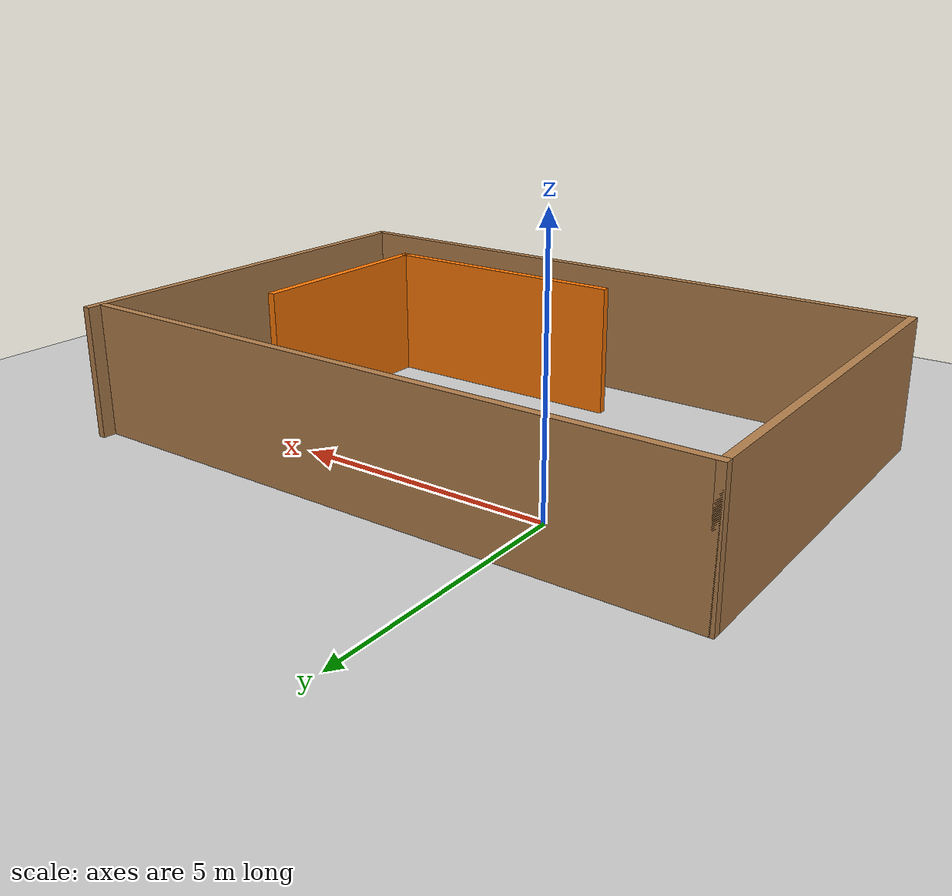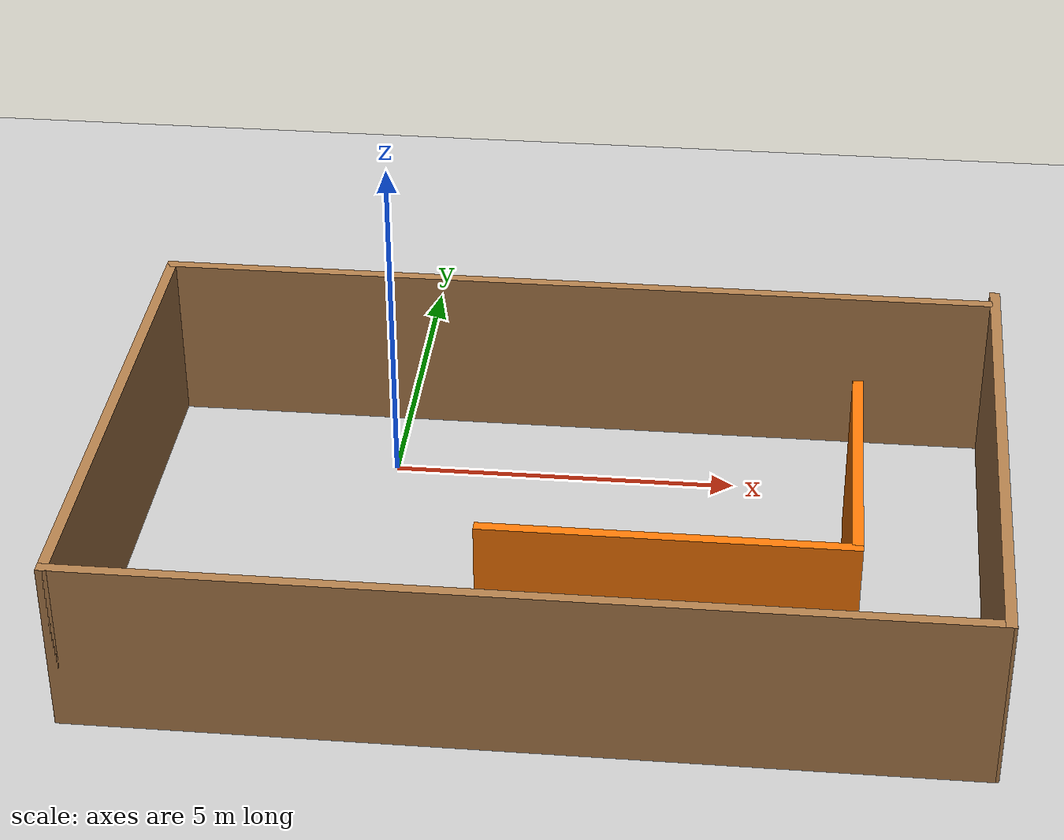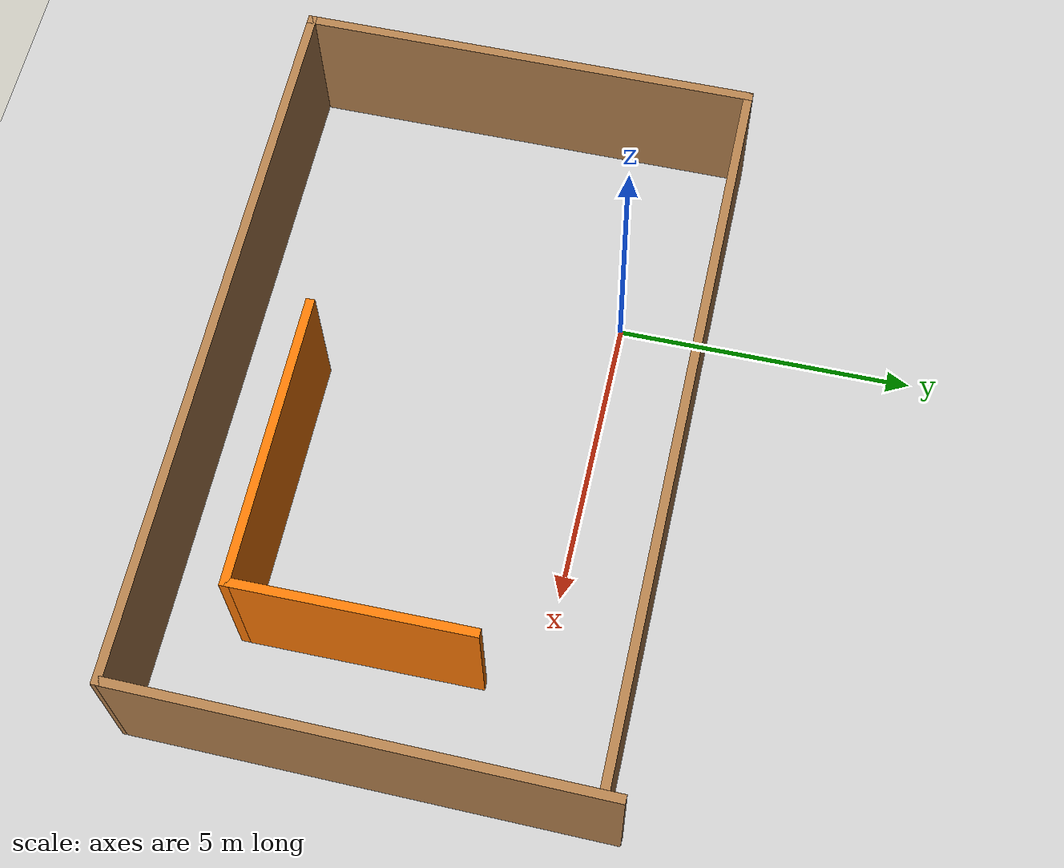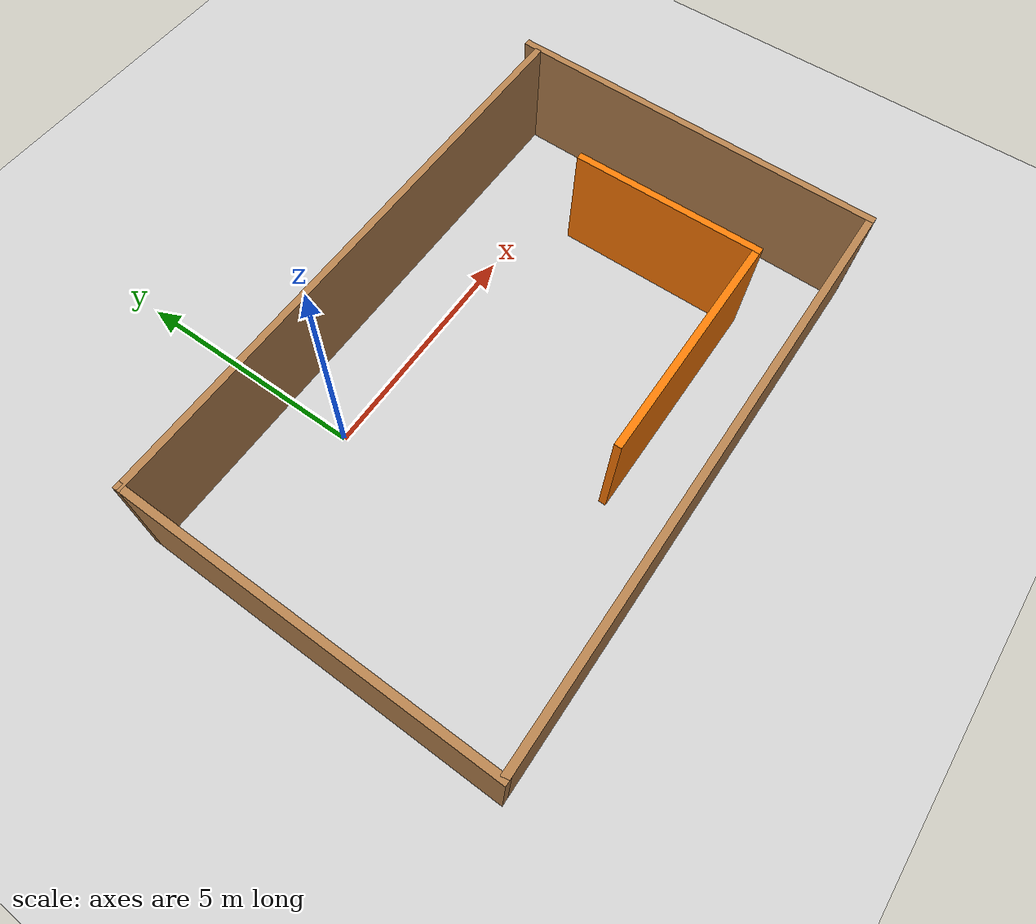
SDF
<sdf version="1.7">
 <world name="default">
  <light name="sun" type="directional">
   <pose>0 0 10 0 -0 0</pose>
   <diffuse>0.8 0.8 0.8 1</diffuse>
   <specular>0.2 0.2 0.2 1</specular>
   <attenuation>
    <range>1000</range>
    <constant>0.9</constant>
    <linear>0.01</linear>
    <quadratic>0.001</quadratic>
   </attenuation>
   <direction>-0.5 0.1 -0.9</direction>
   <spot><inner_angle>0</inner_angle><outer_angle>0</outer_angle><falloff>0</falloff></spot>
  </light>
  <model name="ground_plane">
   <static>1</static>
   <link name="link">
    <collision name="collision">
     <geometry><plane><normal>0 0 1</normal><size>100 100</size></plane></geometry>
     <surface>
      <contact><collide_bitmask>65535</collide_bitmask></contact>
      <friction><ode><mu>100</mu><mu2>50</mu2></ode></friction>
     </surface>
    </collision>
    <visual name="visual">
     <cast_shadows>0</cast_shadows>
     <geometry><plane><normal>0 0 1</normal><size>100 100</size></plane></geometry>
     <material>
      <script><uri>file://media/materials/scripts/gazebo.material</uri><name>Gazebo/Grey</name></script>
     </material>
    </visual>
   </link>
  </model>
  <gravity>0 0 -9.8</gravity>
  <magnetic_field>6e-06 2.3e-05 -4.2e-05</magnetic_field>
  <atmosphere type="adiabatic"/>
  <physics type="ode">
   <max_step_size>0.001</max_step_size>
   <real_time_factor>1</real_time_factor>
   <real_time_update_rate>1000</real_time_update_rate>
  </physics>
  <scene><ambient>0.4 0.4 0.4 1</ambient><background>0.7 0.7 0.7 1</background><shadows>1</shadows></scene>
  <spherical_coordinates>
   <surface_model>EARTH_WGS84</surface_model>
   <latitude_deg>0</latitude_deg>
   <longitude_deg>0</longitude_deg>
   <elevation>0</elevation>
   <heading_deg>0</heading_deg>
  </spherical_coordinates>
  <model name="room">
   <pose>2.5714 -2.25094 0 0 -0 0</pose>
   <link name="Wall_10">
    <collision name="Wall_10_Collision">
     <geometry><box><size>12.25 0.15 2.5</size></box></geometry>
     <pose>0 0 1.25 0 -0 0</pose>
    </collision>
    <visual name="Wall_10_Visual">
     <pose>0 0 1.25 0 -0 0</pose>
     <geometry><box><size>12.25 0.15 2.5</size></box></geometry>
     <material>
      <script><uri>file://media/materials/scripts/gazebo.material</uri><name>Gazebo/Wood</name></script>
      <ambient>1 1 1 1</ambient>
     </material>
     <meta><layer>0</layer></meta>
    </visual>
    <pose>-0.062107 3.675 0 0 -0 0</pose>
   </link>
   <link name="Wall_12">
    <collision name="Wall_12_Collision">
     <geometry><box><size>4 0.15 2.5</size></box></geometry>
     <pose>0 0 1.25 0 -0 0</pose>
    </collision>
    <visual name="Wall_12_Visual">
     <pose>0 0 1.25 0 -0 0</pose>
     <geometry><box><size>4 0.15 2.5</size></box></geometry>
     <material>
      <script><uri>file://media/materials/scripts/gazebo.material</uri><name>Gazebo/Grey</name></script>
      <ambient>0.996078 0.47451 0.0196078 1</ambient>
     </material>
     <meta><layer>0</layer></meta>
    </visual>
    <pose>4.11379 -0.595524 0 0 -0 -1.5708</pose>
   </link>
   <link name="Wall_13">
    <collision name="Wall_13_Collision">
     <geometry><box><size>5 0.15 2.5</size></box></geometry>
     <pose>0 0 1.25 0 -0 0</pose>
    </collision>
    <visual name="Wall_13_Visual">
     <pose>0 0 1.25 0 -0 0</pose>
     <geometry><box><size>5 0.15 2.5</size></box></geometry>
     <material>
      <script><uri>file://media/materials/scripts/gazebo.material</uri><name>Gazebo/Grey</name></script>
      <ambient>0.996078 0.47451 0.0196078 1</ambient>
     </material>
     <meta><layer>0</layer></meta>
    </visual>
    <pose>1.68879 -2.52052 0 0 -0 3.14159</pose>
   </link>
   <link name="Wall_3">
    <collision name="Wall_3_Collision">
     <geometry><box><size>7.75 0.15 2.5</size></box></geometry>
     <pose>0 0 1.25 0 -0 0</pose>
    </collision>
    <visual name="Wall_3_Visual">
     <pose>0 0 1.25 0 -0 0</pose>
     <geometry><box><size>7.75 0.15 2.5</size></box></geometry>
     <material>
      <script><uri>file://media/materials/scripts/gazebo.material</uri><name>Gazebo/Wood</name></script>
      <ambient>1 1 1 1</ambient>
     </material>
     <meta><layer>0</layer></meta>
    </visual>
    <pose>-6.11211 -0.125 0 0 -0 -1.5708</pose>
   </link>
   <link name="Wall_4">
    <collision name="Wall_4_Collision">
     <geometry><box><size>12.25 0.15 2.5</size></box></geometry>
     <pose>0 0 1.25 0 -0 0</pose>
    </collision>
    <visual name="Wall_4_Visual">
     <pose>0 0 1.25 0 -0 0</pose>
     <geometry><box><size>12.25 0.15 2.5</size></box></geometry>
     <material>
      <script><uri>file://media/materials/scripts/gazebo.material</uri><name>Gazebo/Wood</name></script>
      <ambient>1 1 1 1</ambient>
     </material>
     <meta><layer>0</layer></meta>
    </visual>
    <pose>-0.062107 -3.925 0 0 -0 0</pose>
   </link>
   <link name="Wall_5">
    <collision name="Wall_5_Collision">
     <geometry><box><size>8 0.15 2.5</size></box></geometry>
     <pose>0 0 1.25 0 -0 0</pose>
    </collision>
    <visual name="Wall_5_Visual">
     <pose>0 0 1.25 0 -0 0</pose>
     <geometry><box><size>8 0.15 2.5</size></box></geometry>
     <material>
      <script><uri>file://media/materials/scripts/gazebo.material</uri><name>Gazebo/Wood</name></script>
      <ambient>1 1 1 1</ambient>
     </material>
     <meta><layer>0</layer></meta>
    </visual>
    <pose>6.04942 0 0 0 -0 1.55512</pose>
   </link>
   <static>1</static>
  </model>
 </world>
</sdf>
